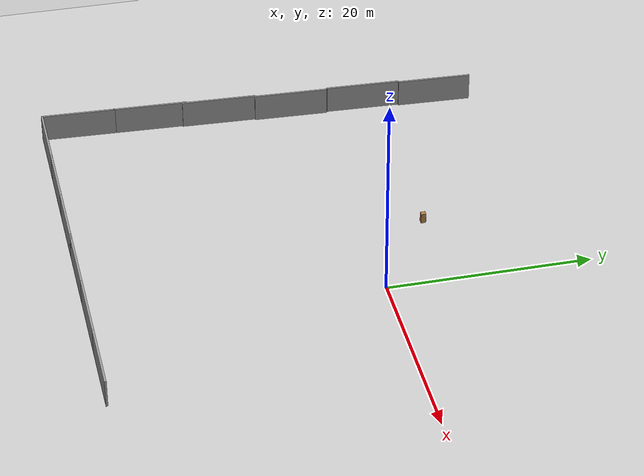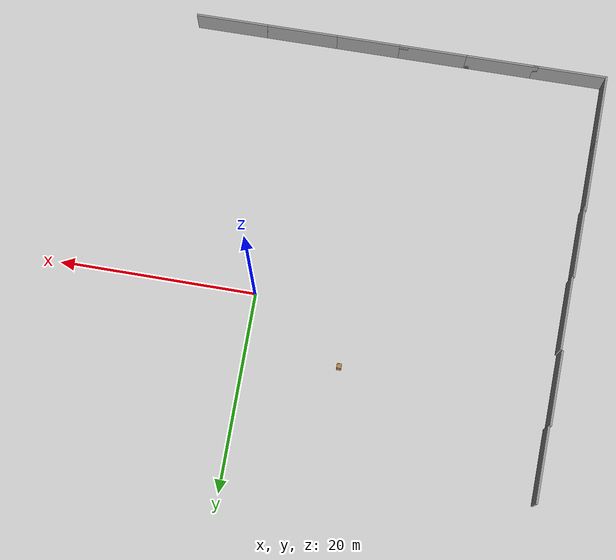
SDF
<sdf version="1.5">
 <world name="default">
  <model name="ground_plane">
   <static>1</static>
   <link name="link">
    <collision name="collision">
     <geometry><plane><normal>0 0 1</normal><size>100 100</size></plane></geometry>
     <surface><friction><ode><mu>100</mu><mu2>50</mu2></ode></friction></surface>
    </collision>
    <visual name="visual">
     <cast_shadows>0</cast_shadows>
     <geometry><plane><normal>0 0 1</normal><size>100 100</size></plane></geometry>
     <material>
      <script><uri>file://media/materials/scripts/gazebo.material</uri><name>Gazebo/Grey</name></script>
     </material>
    </visual>
   </link>
  </model>
  <light name="sun" type="directional">
   <pose>0 0 10 0 -0 0</pose>
   <diffuse>0.8 0.8 0.8 1</diffuse>
   <specular>0.2 0.2 0.2 1</specular>
   <attenuation>
    <range>1000</range>
    <constant>0.9</constant>
    <linear>0.01</linear>
    <quadratic>0.001</quadratic>
   </attenuation>
   <direction>-0.5 0.1 -0.9</direction>
  </light>
  <light name="my_light0" type="directional">
   <pose>0 0 30 0 -0 0</pose>
   <diffuse>0.5 0.5 0.5 1</diffuse>
   <specular>0.1 0.1 0.1 1</specular>
   <direction>0.1 0.1 -0.9</direction>
   <attenuation>
    <range>20</range>
    <linear>0.01</linear>
    <constant>0.5</constant>
    <quadratic>0.001</quadratic>
   </attenuation>
  </light>
  <physics name="default_physics" default="0" type="ode">
   <max_step_size>0.001</max_step_size>
   <real_time_factor>1</real_time_factor>
   <real_time_update_rate>1000</real_time_update_rate>
   <gravity>0 0 -9.8</gravity>
   <magnetic_field>5.5645e-06 2.28758e-05 -4.23884e-05</magnetic_field>
  </physics>
  <scene><ambient>0.4 0.4 0.4 1</ambient><background>0.7 0.7 0.7 1</background><shadows>1</shadows></scene>
  <spherical_coordinates>
   <surface_model>EARTH_WGS84</surface_model>
   <latitude_deg>0</latitude_deg>
   <longitude_deg>0</longitude_deg>
   <elevation>0</elevation>
   <heading_deg>0</heading_deg>
  </spherical_coordinates>
  <model name="grey_wall">
   <static>1</static>
   <link name="link">
    <pose>0 0 1.4 0 -0 0</pose>
    <collision name="collision"><geometry><box><size>7.5 0.2 2.8</size></box></geometry></collision>
    <visual name="visual">
     <cast_shadows>0</cast_shadows>
     <geometry><box><size>7.5 0.2 2.8</size></box></geometry>
     <material>
      <script>
       <uri>model://grey_wall/materials/scripts</uri>
       <uri>model://grey_wall/materials/textures</uri>
       <name>vrc/grey_wall</name>
      </script>
     </material>
    </visual>
   </link>
   <pose>-7.43839 -28 0 0 -0 0</pose>
  </model>
  <model name="grey_wall_0">
   <static>1</static>
   <link name="link">
    <pose>0 0 1.4 0 -0 0</pose>
    <collision name="collision"><geometry><box><size>7.5 0.2 2.8</size></box></geometry></collision>
    <visual name="visual">
     <cast_shadows>0</cast_shadows>
     <geometry><box><size>7.5 0.2 2.8</size></box></geometry>
     <material>
      <script>
       <uri>model://grey_wall/materials/scripts</uri>
       <uri>model://grey_wall/materials/textures</uri>
       <name>vrc/grey_wall</name>
      </script>
     </material>
    </visual>
   </link>
   <pose>0 -28 0 0 -0 0</pose>
  </model>
  <model name="grey_wall_1">
   <static>1</static>
   <link name="link">
    <pose>0 0 1.4 0 -0 0</pose>
    <collision name="collision"><geometry><box><size>7.5 0.2 2.8</size></box></geometry></collision>
    <visual name="visual">
     <cast_shadows>0</cast_shadows>
     <geometry><box><size>7.5 0.2 2.8</size></box></geometry>
     <material>
      <script>
       <uri>model://grey_wall/materials/scripts</uri>
       <uri>model://grey_wall/materials/textures</uri>
       <name>vrc/grey_wall</name>
      </script>
     </material>
    </visual>
   </link>
   <pose>7.43181 -28 0 0 -0 0</pose>
  </model>
  <model name="grey_wall_2">
   <static>1</static>
   <link name="link">
    <pose>0 0 1.4 0 -0 0</pose>
    <collision name="collision"><geometry><box><size>7.5 0.2 2.8</size></box></geometry></collision>
    <visual name="visual">
     <cast_shadows>0</cast_shadows>
     <geometry><box><size>7.5 0.2 2.8</size></box></geometry>
     <material>
      <script>
       <uri>model://grey_wall/materials/scripts</uri>
       <uri>model://grey_wall/materials/textures</uri>
       <name>vrc/grey_wall</name>
      </script>
     </material>
    </visual>
   </link>
   <pose>-14 -28 0 0 -0 0</pose>
  </model>
  <model name="grey_wall_3">
   <static>1</static>
   <link name="link">
    <pose>0 0 1.4 0 -0 0</pose>
    <collision name="collision"><geometry><box><size>7.5 0.2 2.8</size></box></geometry></collision>
    <visual name="visual">
     <cast_shadows>0</cast_shadows>
     <geometry><box><size>7.5 0.2 2.8</size></box></geometry>
     <material>
      <script>
       <uri>model://grey_wall/materials/scripts</uri>
       <uri>model://grey_wall/materials/textures</uri>
       <name>vrc/grey_wall</name>
      </script>
     </material>
    </visual>
   </link>
   <pose>-21 -28 0 0 -0 0</pose>
  </model>
  <model name="grey_wall_4">
   <static>1</static>
   <link name="link">
    <pose>0 0 1.4 0 -0 0</pose>
    <collision name="collision"><geometry><box><size>7.5 0.2 2.8</size></box></geometry></collision>
    <visual name="visual">
     <cast_shadows>0</cast_shadows>
     <geometry><box><size>7.5 0.2 2.8</size></box></geometry>
     <material>
      <script>
       <uri>model://grey_wall/materials/scripts</uri>
       <uri>model://grey_wall/materials/textures</uri>
       <name>vrc/grey_wall</name>
      </script>
     </material>
    </visual>
   </link>
   <pose>-28 -28 0 0 -0 0</pose>
  </model>
  <model name="grey_wall_5">
   <static>1</static>
   <link name="link">
    <pose>0 0 1.4 0 -0 0</pose>
    <collision name="collision"><geometry><box><size>7.5 0.2 2.8</size></box></geometry></collision>
    <visual name="visual">
     <cast_shadows>0</cast_shadows>
     <geometry><box><size>7.5 0.2 2.8</size></box></geometry>
     <material>
      <script>
       <uri>model://grey_wall/materials/scripts</uri>
       <uri>model://grey_wall/materials/textures</uri>
       <name>vrc/grey_wall</name>
      </script>
     </material>
    </visual>
   </link>
   <pose>-31.6635 -24.3509 0 0 0 -1.60979</pose>
  </model>
  <model name="grey_wall_5_clone">
   <static>1</static>
   <link name="link">
    <pose>0 0 1.4 0 -0 0</pose>
    <collision name="collision"><geometry><box><size>7.5 0.2 2.8</size></box></geometry></collision>
    <visual name="visual">
     <cast_shadows>0</cast_shadows>
     <geometry><box><size>7.5 0.2 2.8</size></box></geometry>
     <material>
      <script>
       <uri>model://grey_wall/materials/scripts</uri>
       <uri>model://grey_wall/materials/textures</uri>
       <name>vrc/grey_wall</name>
      </script>
     </material>
    </visual>
   </link>
   <pose>-31.3785 -17.0146 0 0 0 -1.60979</pose>
  </model>
  <model name="grey_wall_5_clone_0">
   <static>1</static>
   <link name="link">
    <pose>0 0 1.4 0 -0 0</pose>
    <collision name="collision"><geometry><box><size>7.5 0.2 2.8</size></box></geometry></collision>
    <visual name="visual">
     <cast_shadows>0</cast_shadows>
     <geometry><box><size>7.5 0.2 2.8</size></box></geometry>
     <material>
      <script>
       <uri>model://grey_wall/materials/scripts</uri>
       <uri>model://grey_wall/materials/textures</uri>
       <name>vrc/grey_wall</name>
      </script>
     </material>
    </visual>
   </link>
   <pose>-31 -10 0 0 0 -1.60979</pose>
  </model>
  <model name="grey_wall_5_clone_1">
   <static>1</static>
   <link name="link">
    <pose>0 0 1.4 0 -0 0</pose>
    <collision name="collision"><geometry><box><size>7.5 0.2 2.8</size></box></geometry></collision>
    <visual name="visual">
     <cast_shadows>0</cast_shadows>
     <geometry><box><size>7.5 0.2 2.8</size></box></geometry>
     <material>
      <script>
       <uri>model://grey_wall/materials/scripts</uri>
       <uri>model://grey_wall/materials/textures</uri>
       <name>vrc/grey_wall</name>
      </script>
     </material>
    </visual>
   </link>
   <pose>-30.575 -2.5409 0 0 0 -1.60979</pose>
  </model>
  <model name="grey_wall_5_clone_2">
   <static>1</static>
   <link name="link">
    <pose>0 0 1.4 0 -0 0</pose>
    <collision name="collision"><geometry><box><size>7.5 0.2 2.8</size></box></geometry></collision>
    <visual name="visual">
     <cast_shadows>0</cast_shadows>
     <geometry><box><size>7.5 0.2 2.8</size></box></geometry>
     <material>
      <script>
       <uri>model://grey_wall/materials/scripts</uri>
       <uri>model://grey_wall/materials/textures</uri>
       <name>vrc/grey_wall</name>
      </script>
     </material>
    </visual>
   </link>
   <pose>-30.4456 5 0 0 0 -1.60979</pose>
  </model>
  <model name="grey_wall_5_clone_3">
   <static>1</static>
   <link name="link">
    <pose>0 0 1.4 0 -0 0</pose>
    <collision name="collision"><geometry><box><size>7.5 0.2 2.8</size></box></geometry></collision>
    <visual name="visual">
     <cast_shadows>0</cast_shadows>
     <geometry><box><size>7.5 0.2 2.8</size></box></geometry>
     <material>
      <script>
       <uri>model://grey_wall/materials/scripts</uri>
       <uri>model://grey_wall/materials/textures</uri>
       <name>vrc/grey_wall</name>
      </script>
     </material>
    </visual>
   </link>
   <pose>-30 12.4858 0 0 0 -1.60979</pose>
  </model>
  <model name="cabinet">
   <static>1</static>
   <link name="cabinet_bottom_plate">
    <inertial>
     <pose>0 0 -1 0 -0 0</pose>
     <inertia><ixx>2.05</ixx><ixy>0</ixy><ixz>0</ixz><iyy>2.05</iyy><iyz>0</iyz><izz>2.05</izz></inertia>
     <mass>25</mass>
    </inertial>
    <collision name="cabinet_bottom_plate_geom">
     <pose>0 0 0.01 0 -0 0</pose>
     <geometry><box><size>0.45 0.45 0.02</size></box></geometry>
    </collision>
    <visual name="cabinet_bottom_plate_geom_visual">
     <pose>0 0 0.01 0 -0 0</pose>
     <geometry><box><size>0.45 0.45 0.02</size></box></geometry>
     <material>
      <script><uri>file://media/materials/scripts/gazebo.material</uri><name>Gazebo/Wood</name></script>
     </material>
    </visual>
    <collision name="cabinet_bottom_plate_geom_cabinet_back_plate">
     <pose>0.235 0 0.51 0 -0 0</pose>
     <geometry><box><size>0.02 0.45 1.02</size></box></geometry>
    </collision>
    <visual name="cabinet_bottom_plate_geom_cabinet_back_plate_visual">
     <pose>0.235 0 0.51 0 -0 0</pose>
     <geometry><box><size>0.02 0.45 1.02</size></box></geometry>
     <material>
      <script><uri>file://media/materials/scripts/gazebo.material</uri><name>Gazebo/Wood</name></script>
     </material>
    </visual>
    <collision name="cabinet_bottom_plate_geom_cabinet_left_plate">
     <pose>0 0.235 0.51 0 -0 0</pose>
     <geometry><box><size>0.45 0.02 1.02</size></box></geometry>
    </collision>
    <visual name="cabinet_bottom_plate_geom_cabinet_left_plate_visual">
     <pose>0 0.235 0.51 0 -0 0</pose>
     <geometry><box><size>0.45 0.02 1.02</size></box></geometry>
     <material>
      <script><uri>file://media/materials/scripts/gazebo.material</uri><name>Gazebo/Wood</name></script>
     </material>
    </visual>
    <collision name="cabinet_bottom_plate_geom_cabinet_middle_plate">
     <pose>0 0 0.51 0 -0 0</pose>
     <geometry><box><size>0.45 0.45 0.02</size></box></geometry>
    </collision>
    <visual name="cabinet_bottom_plate_geom_cabinet_middle_plate_visual">
     <pose>0 0 0.51 0 -0 0</pose>
     <geometry><box><size>0.45 0.45 0.02</size></box></geometry>
     <material>
      <script><uri>file://media/materials/scripts/gazebo.material</uri><name>Gazebo/Wood</name></script>
     </material>
    </visual>
    <collision name="cabinet_bottom_plate_geom_cabinet_right_plate">
     <pose>0 -0.235 0.51 0 -0 0</pose>
     <geometry><box><size>0.45 0.02 1.02</size></box></geometry>
    </collision>
    <visual name="cabinet_bottom_plate_geom_cabinet_right_plate_visual">
     <pose>0 -0.235 0.51 0 -0 0</pose>
     <geometry><box><size>0.45 0.02 1.02</size></box></geometry>
     <material>
      <script><uri>file://media/materials/scripts/gazebo.material</uri><name>Gazebo/Wood</name></script>
     </material>
    </visual>
    <collision name="cabinet_bottom_plate_geom_cabinet_top_plate">
     <pose>0 0 1.01 0 -0 0</pose>
     <geometry><box><size>0.45 0.45 0.02</size></box></geometry>
    </collision>
    <visual name="cabinet_bottom_plate_geom_cabinet_top_plate_visual">
     <pose>0 0 1.01 0 -0 0</pose>
     <geometry><box><size>0.45 0.45 0.02</size></box></geometry>
     <material>
      <script><uri>file://media/materials/scripts/gazebo.material</uri><name>Gazebo/Wood</name></script>
     </material>
    </visual>
   </link>
   <pose>-9.46444 6 0 0 -0 0</pose>
  </model>
 </world>
</sdf>
